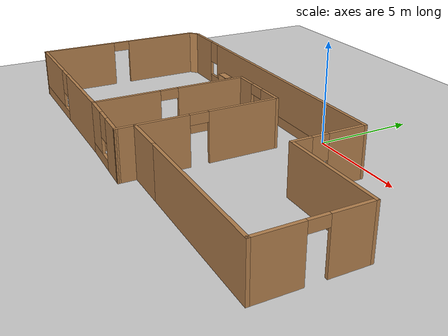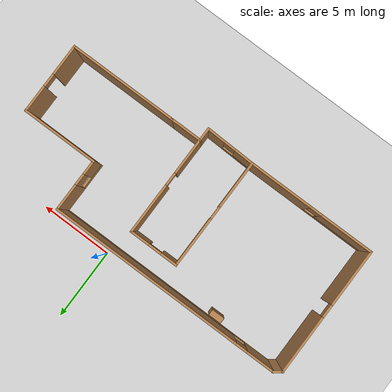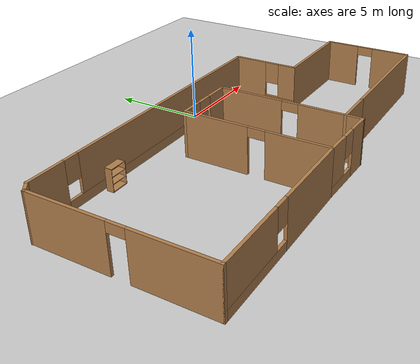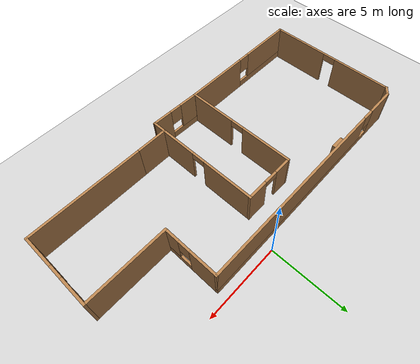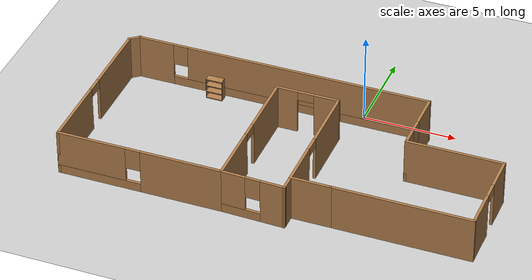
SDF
<sdf version="1.7">
 <world name="default">
  <light name="sun" type="directional">
   <pose>0 0 10 0 -0 0</pose>
   <diffuse>0.8 0.8 0.8 1</diffuse>
   <specular>0.2 0.2 0.2 1</specular>
   <attenuation>
    <range>1000</range>
    <constant>0.9</constant>
    <linear>0.01</linear>
    <quadratic>0.001</quadratic>
   </attenuation>
   <direction>-0.5 0.1 -0.9</direction>
   <spot><inner_angle>0</inner_angle><outer_angle>0</outer_angle><falloff>0</falloff></spot>
  </light>
  <model name="ground_plane">
   <static>1</static>
   <link name="link">
    <collision name="collision">
     <geometry><plane><normal>0 0 1</normal><size>100 100</size></plane></geometry>
     <surface>
      <contact><collide_bitmask>65535</collide_bitmask></contact>
      <friction><ode><mu>100</mu><mu2>50</mu2></ode></friction>
     </surface>
    </collision>
    <visual name="visual">
     <cast_shadows>0</cast_shadows>
     <geometry><plane><normal>0 0 1</normal><size>100 100</size></plane></geometry>
     <material>
      <script><uri>file://media/materials/scripts/gazebo.material</uri><name>Gazebo/Grey</name></script>
     </material>
    </visual>
   </link>
  </model>
  <gravity>0 0 -9.8</gravity>
  <magnetic_field>6e-06 2.3e-05 -4.2e-05</magnetic_field>
  <atmosphere type="adiabatic"/>
  <physics type="ode">
   <max_step_size>0.001</max_step_size>
   <real_time_factor>1</real_time_factor>
   <real_time_update_rate>1000</real_time_update_rate>
  </physics>
  <scene><ambient>0.4 0.4 0.4 1</ambient><background>0.7 0.7 0.7 1</background><shadows>1</shadows></scene>
  <spherical_coordinates>
   <surface_model>EARTH_WGS84</surface_model>
   <latitude_deg>0</latitude_deg>
   <longitude_deg>0</longitude_deg>
   <elevation>0</elevation>
   <heading_deg>0</heading_deg>
  </spherical_coordinates>
  <model name="world">
   <pose>-2.0236 -5.02231 0 0 -0 0</pose>
   <link name="Wall_21">
    <pose>-2.30988 4.3549 0 0 -0 0</pose>
    <visual name="Wall_21_Visual_0">
     <pose>-7.10784 0 1.25 0 -0 0</pose>
     <geometry><box><size>2.03432 0.15 2.5</size></box></geometry>
     <material>
      <script><uri>file://media/materials/scripts/gazebo.material</uri><name>Gazebo/Wood</name></script>
      <ambient>1 1 1 1</ambient>
     </material>
     <meta><layer>0</layer></meta>
    </visual>
    <collision name="Wall_21_Collision_0">
     <geometry><box><size>2.03432 0.15 2.5</size></box></geometry>
     <pose>-7.10784 0 1.25 0 -0 0</pose>
    </collision>
    <visual name="Wall_21_Visual_1">
     <pose>1.01716 0 0.25 0 -0 0</pose>
     <geometry><box><size>14.2157 0.15 0.5</size></box></geometry>
     <material>
      <script><uri>file://media/materials/scripts/gazebo.material</uri><name>Gazebo/Wood</name></script>
      <ambient>1 1 1 1</ambient>
     </material>
     <meta><layer>0</layer></meta>
    </visual>
    <collision name="Wall_21_Collision_1">
     <geometry><box><size>14.2157 0.15 0.5</size></box></geometry>
     <pose>1.01716 0 0.25 0 -0 0</pose>
    </collision>
    <visual name="Wall_21_Visual_2">
     <pose>1.41716 0 1.5 0 -0 0</pose>
     <geometry><box><size>13.4157 0.15 2</size></box></geometry>
     <material>
      <script><uri>file://media/materials/scripts/gazebo.material</uri><name>Gazebo/Wood</name></script>
      <ambient>1 1 1 1</ambient>
     </material>
     <meta><layer>0</layer></meta>
    </visual>
    <collision name="Wall_21_Collision_2">
     <geometry><box><size>13.4157 0.15 2</size></box></geometry>
     <pose>1.41716 0 1.5 0 -0 0</pose>
    </collision>
    <visual name="Wall_21_Visual_3">
     <pose>-5.69068 0 1.9 0 -0 0</pose>
     <geometry><box><size>0.8 0.15 1.2</size></box></geometry>
     <material>
      <script><uri>file://media/materials/scripts/gazebo.material</uri><name>Gazebo/Wood</name></script>
      <ambient>1 1 1 1</ambient>
     </material>
     <meta><layer>0</layer></meta>
    </visual>
    <collision name="Wall_21_Collision_3">
     <geometry><box><size>0.8 0.15 1.2</size></box></geometry>
     <pose>-5.69068 0 1.9 0 -0 0</pose>
    </collision>
   </link>
   <link name="Wall_22">
    <pose>5.74012 2.5549 0 0 -0 -1.5708</pose>
    <visual name="Wall_22_Visual_0">
     <pose>-0.915665 0 1.25 0 -0 0</pose>
     <geometry><box><size>1.91867 0.15 2.5</size></box></geometry>
     <material>
      <script><uri>file://media/materials/scripts/gazebo.material</uri><name>Gazebo/Wood</name></script>
      <ambient>1 1 1 1</ambient>
     </material>
     <meta><layer>0</layer></meta>
    </visual>
    <collision name="Wall_22_Collision_0">
     <geometry><box><size>1.91867 0.15 2.5</size></box></geometry>
     <pose>-0.915665 0 1.25 0 -0 0</pose>
    </collision>
    <visual name="Wall_22_Visual_1">
     <pose>0.959335 0 0.25 0 -0 0</pose>
     <geometry><box><size>1.83133 0.15 0.5</size></box></geometry>
     <material>
      <script><uri>file://media/materials/scripts/gazebo.material</uri><name>Gazebo/Wood</name></script>
      <ambient>1 1 1 1</ambient>
     </material>
     <meta><layer>0</layer></meta>
    </visual>
    <collision name="Wall_22_Collision_1">
     <geometry><box><size>1.83133 0.15 0.5</size></box></geometry>
     <pose>0.959335 0 0.25 0 -0 0</pose>
    </collision>
    <visual name="Wall_22_Visual_2">
     <pose>1.35933 0 1.5 0 -0 0</pose>
     <geometry><box><size>1.03133 0.15 2</size></box></geometry>
     <material>
      <script><uri>file://media/materials/scripts/gazebo.material</uri><name>Gazebo/Wood</name></script>
      <ambient>1 1 1 1</ambient>
     </material>
     <meta><layer>0</layer></meta>
    </visual>
    <collision name="Wall_22_Collision_2">
     <geometry><box><size>1.03133 0.15 2</size></box></geometry>
     <pose>1.35933 0 1.5 0 -0 0</pose>
    </collision>
    <visual name="Wall_22_Visual_3">
     <pose>0.443669 0 1.9 0 -0 0</pose>
     <geometry><box><size>0.8 0.15 1.2</size></box></geometry>
     <material>
      <script><uri>file://media/materials/scripts/gazebo.material</uri><name>Gazebo/Wood</name></script>
      <ambient>1 1 1 1</ambient>
     </material>
     <meta><layer>0</layer></meta>
    </visual>
    <collision name="Wall_22_Collision_3">
     <geometry><box><size>0.8 0.15 1.2</size></box></geometry>
     <pose>0.443669 0 1.9 0 -0 0</pose>
    </collision>
   </link>
   <link name="Wall_23">
    <collision name="Wall_23_Collision">
     <geometry><box><size>5.25 0.15 2.5</size></box></geometry>
     <pose>0 0 1.25 0 -0 0</pose>
    </collision>
    <visual name="Wall_23_Visual">
     <pose>0 0 1.25 0 -0 0</pose>
     <geometry><box><size>5.25 0.15 2.5</size></box></geometry>
     <material>
      <script><uri>file://media/materials/scripts/gazebo.material</uri><name>Gazebo/Wood</name></script>
      <ambient>1 1 1 1</ambient>
     </material>
     <meta><layer>0</layer></meta>
    </visual>
    <pose>8.29012 0.754899 0 0 -0 0</pose>
   </link>
   <link name="Wall_24">
    <pose>10.8401 -1.6701 0 0 -0 -1.5708</pose>
    <visual name="Wall_24_Visual_0">
     <pose>-1.53835 0 1.25 0 -0 0</pose>
     <geometry><box><size>1.92331 0.15 2.5</size></box></geometry>
     <material>
      <script><uri>file://media/materials/scripts/gazebo.material</uri><name>Gazebo/Wood</name></script>
      <ambient>0.760784 0.662745 0.627451 1</ambient>
     </material>
     <meta><layer>0</layer></meta>
    </visual>
    <collision name="Wall_24_Collision_0">
     <geometry><box><size>1.92331 0.15 2.5</size></box></geometry>
     <pose>-1.53835 0 1.25 0 -0 0</pose>
    </collision>
    <visual name="Wall_24_Visual_1">
     <pose>1.41165 0 1.25 0 -0 0</pose>
     <geometry><box><size>2.1767 0.15 2.5</size></box></geometry>
     <material>
      <script><uri>file://media/materials/scripts/gazebo.material</uri><name>Gazebo/Wood</name></script>
      <ambient>0.760784 0.662745 0.627451 1</ambient>
     </material>
     <meta><layer>0</layer></meta>
    </visual>
    <collision name="Wall_24_Collision_1">
     <geometry><box><size>2.1767 0.15 2.5</size></box></geometry>
     <pose>1.41165 0 1.25 0 -0 0</pose>
    </collision>
    <visual name="Wall_24_Visual_2">
     <pose>-0.126695 0 2.25 0 -0 0</pose>
     <geometry><box><size>0.9 0.15 0.5</size></box></geometry>
     <material>
      <script><uri>file://media/materials/scripts/gazebo.material</uri><name>Gazebo/Wood</name></script>
      <ambient>0.760784 0.662745 0.627451 1</ambient>
     </material>
     <meta><layer>0</layer></meta>
    </visual>
    <collision name="Wall_24_Collision_2">
     <geometry><box><size>0.9 0.15 0.5</size></box></geometry>
     <pose>-0.126695 0 2.25 0 -0 0</pose>
    </collision>
   </link>
   <link name="Wall_25">
    <collision name="Wall_25_Collision">
     <geometry><box><size>7.5 0.15 2.5</size></box></geometry>
     <pose>0 0 1.25 0 -0 0</pose>
    </collision>
    <visual name="Wall_25_Visual">
     <pose>0 0 1.25 0 -0 0</pose>
     <geometry><box><size>7.5 0.15 2.5</size></box></geometry>
     <material>
      <script><uri>file://media/materials/scripts/gazebo.material</uri><name>Gazebo/Wood</name></script>
      <ambient>0.760784 0.662745 0.627451 1</ambient>
     </material>
     <meta><layer>0</layer></meta>
    </visual>
    <pose>7.16512 -4.0951 0 0 -0 3.14159</pose>
   </link>
   <link name="Wall_26">
    <collision name="Wall_26_Collision">
     <geometry><box><size>2.25 0.15 2.5</size></box></geometry>
     <pose>0 0 1.25 0 -0 0</pose>
    </collision>
    <visual name="Wall_26_Visual">
     <pose>0 0 1.25 0 -0 0</pose>
     <geometry><box><size>2.25 0.15 2.5</size></box></geometry>
     <material>
      <script><uri>file://media/materials/scripts/gazebo.material</uri><name>Gazebo/Wood</name></script>
      <ambient>1 1 1 1</ambient>
     </material>
     <meta><layer>0</layer></meta>
    </visual>
    <pose>2.44012 -4.0951 0 0 -0 3.14159</pose>
   </link>
   <link name="Wall_27">
    <pose>1.39012 -0.670101 0 0 -0 1.5708</pose>
    <visual name="Wall_27_Visual_0">
     <pose>-2.22661 0 1.25 0 -0 0</pose>
     <geometry><box><size>2.54678 0.15 2.5</size></box></geometry>
     <material>
      <script><uri>file://media/materials/scripts/gazebo.material</uri><name>Gazebo/Wood</name></script>
      <ambient>1 1 1 1</ambient>
     </material>
     <meta><layer>0</layer></meta>
    </visual>
    <collision name="Wall_27_Collision_0">
     <geometry><box><size>2.54678 0.15 2.5</size></box></geometry>
     <pose>-2.22661 0 1.25 0 -0 0</pose>
    </collision>
    <visual name="Wall_27_Visual_1">
     <pose>1.72339 0 1.25 0 -0 0</pose>
     <geometry><box><size>3.55321 0.15 2.5</size></box></geometry>
     <material>
      <script><uri>file://media/materials/scripts/gazebo.material</uri><name>Gazebo/Wood</name></script>
      <ambient>1 1 1 1</ambient>
     </material>
     <meta><layer>0</layer></meta>
    </visual>
    <collision name="Wall_27_Collision_1">
     <geometry><box><size>3.55321 0.15 2.5</size></box></geometry>
     <pose>1.72339 0 1.25 0 -0 0</pose>
    </collision>
    <visual name="Wall_27_Visual_2">
     <pose>-0.503215 0 2.25 0 -0 0</pose>
     <geometry><box><size>0.9 0.15 0.5</size></box></geometry>
     <material>
      <script><uri>file://media/materials/scripts/gazebo.material</uri><name>Gazebo/Wood</name></script>
      <ambient>1 1 1 1</ambient>
     </material>
     <meta><layer>0</layer></meta>
    </visual>
    <collision name="Wall_27_Collision_2">
     <geometry><box><size>0.9 0.15 0.5</size></box></geometry>
     <pose>-0.503215 0 2.25 0 -0 0</pose>
    </collision>
   </link>
   <link name="Wall_28">
    <pose>-0.284877 2.7549 0 0 -0 3.14159</pose>
    <visual name="Wall_28_Visual_0">
     <pose>-1.05871 0 1.25 0 -0 0</pose>
     <geometry><box><size>1.38258 0.15 2.5</size></box></geometry>
     <material>
      <script><uri>file://media/materials/scripts/gazebo.material</uri><name>Gazebo/Wood</name></script>
      <ambient>1 1 1 1</ambient>
     </material>
     <meta><layer>0</layer></meta>
    </visual>
    <collision name="Wall_28_Collision_0">
     <geometry><box><size>1.38258 0.15 2.5</size></box></geometry>
     <pose>-1.05871 0 1.25 0 -0 0</pose>
    </collision>
    <visual name="Wall_28_Visual_1">
     <pose>1.14129 0 1.25 0 -0 0</pose>
     <geometry><box><size>1.21742 0.15 2.5</size></box></geometry>
     <material>
      <script><uri>file://media/materials/scripts/gazebo.material</uri><name>Gazebo/Wood</name></script>
      <ambient>1 1 1 1</ambient>
     </material>
     <meta><layer>0</layer></meta>
    </visual>
    <collision name="Wall_28_Collision_1">
     <geometry><box><size>1.21742 0.15 2.5</size></box></geometry>
     <pose>1.14129 0 1.25 0 -0 0</pose>
    </collision>
    <visual name="Wall_28_Visual_2">
     <pose>0.082577 0 2.25 0 -0 0</pose>
     <geometry><box><size>0.9 0.15 0.5</size></box></geometry>
     <material>
      <script><uri>file://media/materials/scripts/gazebo.material</uri><name>Gazebo/Wood</name></script>
      <ambient>1 1 1 1</ambient>
     </material>
     <meta><layer>0</layer></meta>
    </visual>
    <collision name="Wall_28_Collision_2">
     <geometry><box><size>0.9 0.15 0.5</size></box></geometry>
     <pose>0.082577 0 2.25 0 -0 0</pose>
    </collision>
   </link>
   <link name="Wall_29">
    <pose>-1.95988 -1.0451 0 0 -0 -1.5708</pose>
    <visual name="Wall_29_Visual_0">
     <pose>-2.10996 0 1.25 0 -0 0</pose>
     <geometry><box><size>3.53009 0.15 2.5</size></box></geometry>
     <material>
      <script><uri>file://media/materials/scripts/gazebo.material</uri><name>Gazebo/Wood</name></script>
      <ambient>1 1 1 1</ambient>
     </material>
     <meta><layer>0</layer></meta>
    </visual>
    <collision name="Wall_29_Collision_0">
     <geometry><box><size>3.53009 0.15 2.5</size></box></geometry>
     <pose>-2.10996 0 1.25 0 -0 0</pose>
    </collision>
    <visual name="Wall_29_Visual_1">
     <pose>2.21504 0 1.25 0 -0 0</pose>
     <geometry><box><size>3.31991 0.15 2.5</size></box></geometry>
     <material>
      <script><uri>file://media/materials/scripts/gazebo.material</uri><name>Gazebo/Wood</name></script>
      <ambient>1 1 1 1</ambient>
     </material>
     <meta><layer>0</layer></meta>
    </visual>
    <collision name="Wall_29_Collision_1">
     <geometry><box><size>3.31991 0.15 2.5</size></box></geometry>
     <pose>2.21504 0 1.25 0 -0 0</pose>
    </collision>
    <visual name="Wall_29_Visual_2">
     <pose>0.105085 0 2.25 0 -0 0</pose>
     <geometry><box><size>0.9 0.15 0.5</size></box></geometry>
     <material>
      <script><uri>file://media/materials/scripts/gazebo.material</uri><name>Gazebo/Wood</name></script>
      <ambient>1 1 1 1</ambient>
     </material>
     <meta><layer>0</layer></meta>
    </visual>
    <collision name="Wall_29_Collision_2">
     <geometry><box><size>0.9 0.15 0.5</size></box></geometry>
     <pose>0.105085 0 2.25 0 -0 0</pose>
    </collision>
   </link>
   <link name="Wall_30">
    <pose>-6.38488 -4.8451 0 0 -0 3.14159</pose>
    <visual name="Wall_30_Visual_0">
     <pose>-2.27825 0 1.25 0 -0 0</pose>
     <geometry><box><size>4.44349 0.15 2.5</size></box></geometry>
     <material>
      <script><uri>file://media/materials/scripts/gazebo.material</uri><name>Gazebo/Wood</name></script>
      <ambient>0.760784 0.662745 0.627451 1</ambient>
     </material>
     <meta><layer>0</layer></meta>
    </visual>
    <collision name="Wall_30_Collision_0">
     <geometry><box><size>4.44349 0.15 2.5</size></box></geometry>
     <pose>-2.27825 0 1.25 0 -0 0</pose>
    </collision>
    <visual name="Wall_30_Visual_1">
     <pose>2.22175 0 0.25 0 -0 0</pose>
     <geometry><box><size>4.55651 0.15 0.5</size></box></geometry>
     <material>
      <script><uri>file://media/materials/scripts/gazebo.material</uri><name>Gazebo/Wood</name></script>
      <ambient>0.760784 0.662745 0.627451 1</ambient>
     </material>
     <meta><layer>0</layer></meta>
    </visual>
    <collision name="Wall_30_Collision_1">
     <geometry><box><size>4.55651 0.15 0.5</size></box></geometry>
     <pose>2.22175 0 0.25 0 -0 0</pose>
    </collision>
    <visual name="Wall_30_Visual_2">
     <pose>2.62175 0 1.5 0 -0 0</pose>
     <geometry><box><size>3.75651 0.15 2</size></box></geometry>
     <material>
      <script><uri>file://media/materials/scripts/gazebo.material</uri><name>Gazebo/Wood</name></script>
      <ambient>0.760784 0.662745 0.627451 1</ambient>
     </material>
     <meta><layer>0</layer></meta>
    </visual>
    <collision name="Wall_30_Collision_2">
     <geometry><box><size>3.75651 0.15 2</size></box></geometry>
     <pose>2.62175 0 1.5 0 -0 0</pose>
    </collision>
    <visual name="Wall_30_Visual_3">
     <pose>0.343494 0 1.9 0 -0 0</pose>
     <geometry><box><size>0.8 0.15 1.2</size></box></geometry>
     <material>
      <script><uri>file://media/materials/scripts/gazebo.material</uri><name>Gazebo/Wood</name></script>
      <ambient>0.760784 0.662745 0.627451 1</ambient>
     </material>
     <meta><layer>0</layer></meta>
    </visual>
    <collision name="Wall_30_Collision_3">
     <geometry><box><size>0.8 0.15 1.2</size></box></geometry>
     <pose>0.343494 0 1.9 0 -0 0</pose>
    </collision>
   </link>
   <link name="Wall_31">
    <pose>-10.8099 -0.420101 0 0 -0 1.5708</pose>
    <visual name="Wall_31_Visual_0">
     <pose>-2.49308 0 1.25 0 -0 0</pose>
     <geometry><box><size>4.01383 0.15 2.5</size></box></geometry>
     <material>
      <script><uri>file://media/materials/scripts/gazebo.material</uri><name>Gazebo/Wood</name></script>
      <ambient>1 1 1 1</ambient>
     </material>
     <meta><layer>0</layer></meta>
    </visual>
    <collision name="Wall_31_Collision_0">
     <geometry><box><size>4.01383 0.15 2.5</size></box></geometry>
     <pose>-2.49308 0 1.25 0 -0 0</pose>
    </collision>
    <visual name="Wall_31_Visual_1">
     <pose>2.45692 0 1.25 0 -0 0</pose>
     <geometry><box><size>4.08617 0.15 2.5</size></box></geometry>
     <material>
      <script><uri>file://media/materials/scripts/gazebo.material</uri><name>Gazebo/Wood</name></script>
      <ambient>1 1 1 1</ambient>
     </material>
     <meta><layer>0</layer></meta>
    </visual>
    <collision name="Wall_31_Collision_1">
     <geometry><box><size>4.08617 0.15 2.5</size></box></geometry>
     <pose>2.45692 0 1.25 0 -0 0</pose>
    </collision>
    <visual name="Wall_31_Visual_2">
     <pose>-0.036167 0 2.25 0 -0 0</pose>
     <geometry><box><size>0.9 0.15 0.5</size></box></geometry>
     <material>
      <script><uri>file://media/materials/scripts/gazebo.material</uri><name>Gazebo/Wood</name></script>
      <ambient>1 1 1 1</ambient>
     </material>
     <meta><layer>0</layer></meta>
    </visual>
    <collision name="Wall_31_Collision_2">
     <geometry><box><size>0.9 0.15 0.5</size></box></geometry>
     <pose>-0.036167 0 2.25 0 -0 0</pose>
    </collision>
   </link>
   <link name="Wall_32">
    <collision name="Wall_32_Collision">
     <geometry><box><size>0.720088 0.15 2.5</size></box></geometry>
     <pose>0 0 1.25 0 -0 0</pose>
    </collision>
    <visual name="Wall_32_Visual">
     <pose>0 0 1.25 0 -0 0</pose>
     <geometry><box><size>0.720088 0.15 2.5</size></box></geometry>
     <material>
      <script><uri>file://media/materials/scripts/gazebo.material</uri><name>Gazebo/Wood</name></script>
      <ambient>1 1 1 1</ambient>
     </material>
     <meta><layer>0</layer></meta>
    </visual>
    <pose>-10.5849 4.1799 0 0 -0 0.661043</pose>
   </link>
   <link name="Wall_34">
    <collision name="Wall_34_Collision">
     <geometry><box><size>1 0.15 2.5</size></box></geometry>
     <pose>0 0 1.25 0 -0 0</pose>
    </collision>
    <visual name="Wall_34_Visual">
     <pose>0 0 1.25 0 -0 0</pose>
     <geometry><box><size>1 0.15 2.5</size></box></geometry>
     <material>
      <script><uri>file://media/materials/scripts/gazebo.material</uri><name>Gazebo/Wood</name></script>
      <ambient>1 1 1 1</ambient>
     </material>
     <meta><layer>0</layer></meta>
    </visual>
    <pose>1.39012 -4.5201 0 0 -0 -1.5708</pose>
   </link>
   <link name="Wall_35">
    <pose>-0.284877 -4.8951 0 0 -0 3.11175</pose>
    <visual name="Wall_35_Visual_0">
     <pose>-1.08072 0 1.25 0 -0 0</pose>
     <geometry><box><size>1.34005 0.15 2.5</size></box></geometry>
     <material>
      <script><uri>file://media/materials/scripts/gazebo.material</uri><name>Gazebo/Wood</name></script>
      <ambient>1 1 1 1</ambient>
     </material>
     <meta><layer>0</layer></meta>
    </visual>
    <collision name="Wall_35_Collision_0">
     <geometry><box><size>1.34005 0.15 2.5</size></box></geometry>
     <pose>-1.08072 0 1.25 0 -0 0</pose>
    </collision>
    <visual name="Wall_35_Visual_1">
     <pose>0.670024 0 0.25 0 -0 0</pose>
     <geometry><box><size>2.16144 0.15 0.5</size></box></geometry>
     <material>
      <script><uri>file://media/materials/scripts/gazebo.material</uri><name>Gazebo/Wood</name></script>
      <ambient>1 1 1 1</ambient>
     </material>
     <meta><layer>0</layer></meta>
    </visual>
    <collision name="Wall_35_Collision_1">
     <geometry><box><size>2.16144 0.15 0.5</size></box></geometry>
     <pose>0.670024 0 0.25 0 -0 0</pose>
    </collision>
    <visual name="Wall_35_Visual_2">
     <pose>1.07002 0 1.5 0 -0 0</pose>
     <geometry><box><size>1.36144 0.15 2</size></box></geometry>
     <material>
      <script><uri>file://media/materials/scripts/gazebo.material</uri><name>Gazebo/Wood</name></script>
      <ambient>1 1 1 1</ambient>
     </material>
     <meta><layer>0</layer></meta>
    </visual>
    <collision name="Wall_35_Collision_2">
     <geometry><box><size>1.36144 0.15 2</size></box></geometry>
     <pose>1.07002 0 1.5 0 -0 0</pose>
    </collision>
    <visual name="Wall_35_Visual_3">
     <pose>-0.010698 0 1.9 0 -0 0</pose>
     <geometry><box><size>0.8 0.15 1.2</size></box></geometry>
     <material>
      <script><uri>file://media/materials/scripts/gazebo.material</uri><name>Gazebo/Wood</name></script>
      <ambient>1 1 1 1</ambient>
     </material>
     <meta><layer>0</layer></meta>
    </visual>
    <collision name="Wall_35_Collision_3">
     <geometry><box><size>0.8 0.15 1.2</size></box></geometry>
     <pose>-0.010698 0 1.9 0 -0 0</pose>
    </collision>
   </link>
   <static>1</static>
  </model>
  <model name="bookshelf">
   <static>1</static>
   <link name="link">
    <inertial><mass>1</mass></inertial>
    <collision name="back">
     <pose>0 0.005 0.6 0 -0 0</pose>
     <geometry><box><size>0.9 0.01 1.2</size></box></geometry>
    </collision>
    <visual name="visual1">
     <pose>0 0.005 0.6 0 -0 0</pose>
     <geometry><box><size>0.9 0.01 1.2</size></box></geometry>
     <material>
      <script><uri>file://media/materials/scripts/gazebo.material</uri><name>Gazebo/Wood</name></script>
     </material>
    </visual>
    <collision name="left_side">
     <pose>0.45 -0.195 0.6 0 -0 0</pose>
     <geometry><box><size>0.02 0.4 1.2</size></box></geometry>
    </collision>
    <visual name="visual2">
     <pose>0.45 -0.195 0.6 0 -0 0</pose>
     <geometry><box><size>0.02 0.4 1.2</size></box></geometry>
     <material>
      <script><uri>file://media/materials/scripts/gazebo.material</uri><name>Gazebo/Wood</name></script>
     </material>
    </visual>
    <collision name="right_side">
     <pose>-0.45 -0.195 0.6 0 -0 0</pose>
     <geometry><box><size>0.02 0.4 1.2</size></box></geometry>
    </collision>
    <visual name="visual3">
     <pose>-0.45 -0.195 0.6 0 -0 0</pose>
     <geometry><box><size>0.02 0.4 1.2</size></box></geometry>
     <material>
      <script><uri>file://media/materials/scripts/gazebo.material</uri><name>Gazebo/Wood</name></script>
     </material>
    </visual>
    <collision name="bottom">
     <pose>0 -0.195 0.03 0 -0 0</pose>
     <geometry><box><size>0.88 0.4 0.06</size></box></geometry>
    </collision>
    <visual name="visual4">
     <pose>0 -0.195 0.03 0 -0 0</pose>
     <geometry><box><size>0.88 0.4 0.06</size></box></geometry>
     <material>
      <script><uri>file://media/materials/scripts/gazebo.material</uri><name>Gazebo/Wood</name></script>
     </material>
    </visual>
    <collision name="top">
     <pose>0 -0.195 1.19 0 -0 0</pose>
     <geometry><box><size>0.88 0.4 0.02</size></box></geometry>
    </collision>
    <visual name="visual5">
     <pose>0 -0.195 1.19 0 -0 0</pose>
     <geometry><box><size>0.88 0.4 0.02</size></box></geometry>
     <material>
      <script><uri>file://media/materials/scripts/gazebo.material</uri><name>Gazebo/Wood</name></script>
     </material>
    </visual>
    <collision name="low_shelf">
     <pose>0 -0.195 0.43 0 -0 0</pose>
     <geometry><box><size>0.88 0.4 0.02</size></box></geometry>
    </collision>
    <visual name="visual6">
     <pose>0 -0.195 0.43 0 -0 0</pose>
     <geometry><box><size>0.88 0.4 0.02</size></box></geometry>
     <material>
      <script><uri>file://media/materials/scripts/gazebo.material</uri><name>Gazebo/Wood</name></script>
     </material>
    </visual>
    <collision name="high_shelf">
     <pose>0 -0.195 0.8 0 -0 0</pose>
     <geometry><box><size>0.88 0.4 0.02</size></box></geometry>
    </collision>
    <visual name="visual7">
     <pose>0 -0.195 0.8 0 -0 0</pose>
     <geometry><box><size>0.88 0.4 0.02</size></box></geometry>
     <material>
      <script><uri>file://media/materials/scripts/gazebo.material</uri><name>Gazebo/Wood</name></script>
     </material>
    </visual>
   </link>
   <pose>-7.92266 -0.909787 0 0 -0 0</pose>
  </model>
 </world>
</sdf>
